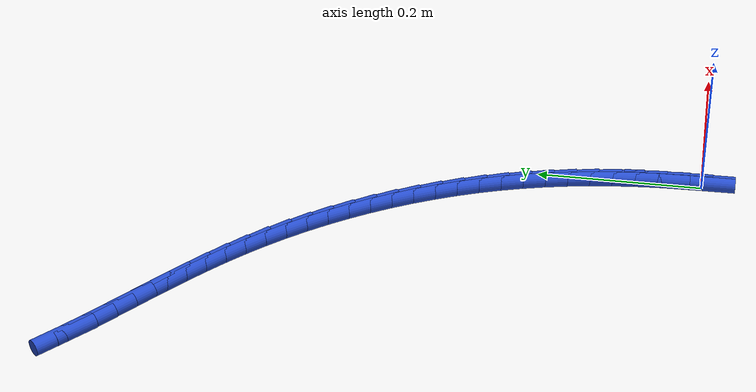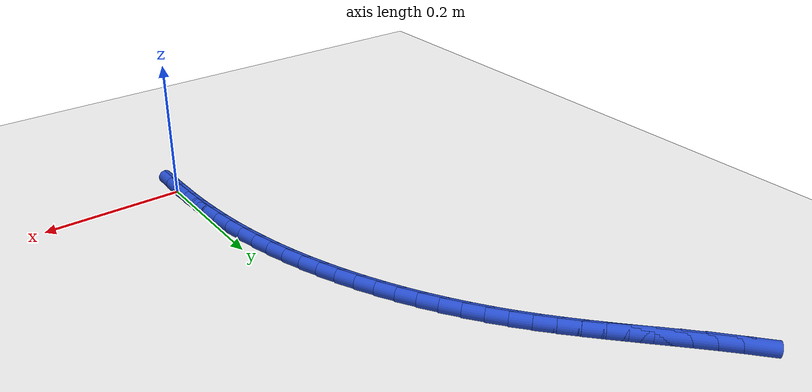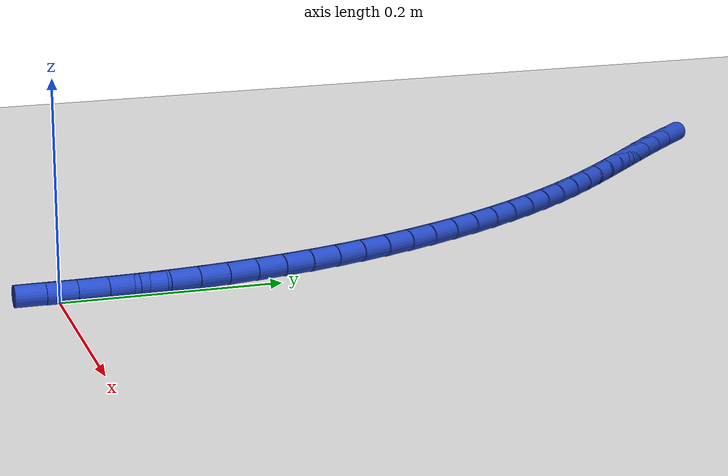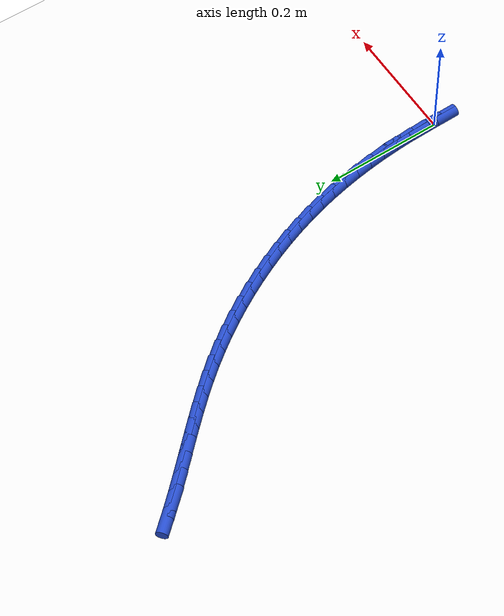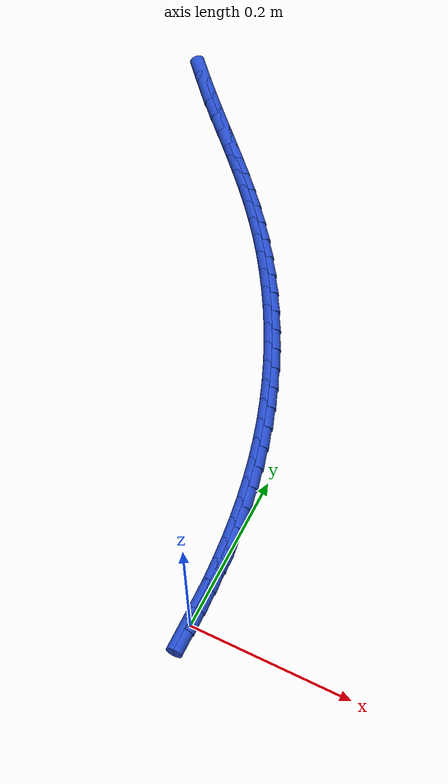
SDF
<sdf version="1.6">
 <world name="default">
  <model name="ground_plane">
   <static>1</static>
   <link name="link">
    <collision name="collision">
     <geometry><plane><normal>0 0 1</normal><size>100 100</size></plane></geometry>
     <surface><friction><ode><mu>100</mu><mu2>50</mu2></ode></friction></surface>
    </collision>
    <visual name="visual">
     <cast_shadows>0</cast_shadows>
     <geometry><plane><normal>0 0 1</normal><size>100 100</size></plane></geometry>
     <material>
      <script><uri>file://media/materials/scripts/gazebo.material</uri><name>Gazebo/WhiteGlow</name></script>
     </material>
    </visual>
   </link>
  </model>
  <model name="line">
   <link name="link_0">
    <pose>5.204170427930421e-18 1.3877787807814457e-17 0.01 0 1.57 -1.5601567712249702</pose>
    <collision name="collision">
     <geometry><cylinder><radius>0.01</radius><length>0.08</length></cylinder></geometry>
    </collision>
    <visual name="visual">
     <material>
      <script><name>Gazebo/Blue</name><uri>file://media/materials/scripts/gazebo.material</uri></script>
     </material>
     <geometry><cylinder><radius>0.01</radius><length>0.08</length></cylinder></geometry>
    </visual>
   </link>
   <link name="link_1">
    <pose>-0.000292424796263529 0.027483644413735873 0.01 0 1.57 -1.5350626083378796</pose>
    <collision name="collision">
     <geometry><cylinder><radius>0.01</radius><length>0.08</length></cylinder></geometry>
    </collision>
    <visual name="visual">
     <material>
      <script><name>Gazebo/Blue</name><uri>file://media/materials/scripts/gazebo.material</uri></script>
     </material>
     <geometry><cylinder><radius>0.01</radius><length>0.08</length></cylinder></geometry>
    </visual>
   </link>
   <link name="link_2">
    <pose>-0.0012735811089987473 0.054929393335032016 0.01 0 1.57 -1.5085356313974962</pose>
    <collision name="collision">
     <geometry><cylinder><radius>0.01</radius><length>0.08</length></cylinder></geometry>
    </collision>
    <visual name="visual">
     <material>
      <script><name>Gazebo/Blue</name><uri>file://media/materials/scripts/gazebo.material</uri></script>
     </material>
     <geometry><cylinder><radius>0.01</radius><length>0.08</length></cylinder></geometry>
    </visual>
   </link>
   <link name="link_3">
    <pose>-0.0029808334702392625 0.08231498203880791 0.01 0 1.57 -1.48055030720396</pose>
    <collision name="collision">
     <geometry><cylinder><radius>0.01</radius><length>0.08</length></cylinder></geometry>
    </collision>
    <visual name="visual">
     <material>
      <script><name>Gazebo/Blue</name><uri>file://media/materials/scripts/gazebo.material</uri></script>
     </material>
     <geometry><cylinder><radius>0.01</radius><length>0.08</length></cylinder></geometry>
    </visual>
   </link>
   <link name="link_4">
    <pose>-0.005451546412018678 0.10961814579998304 0.01 0 1.57 -1.4510875578380813</pose>
    <collision name="collision">
     <geometry><cylinder><radius>0.01</radius><length>0.08</length></cylinder></geometry>
    </collision>
    <visual name="visual">
     <material>
      <script><name>Gazebo/Blue</name><uri>file://media/materials/scripts/gazebo.material</uri></script>
     </material>
     <geometry><cylinder><radius>0.01</radius><length>0.08</length></cylinder></geometry>
    </visual>
   </link>
   <link name="link_5">
    <pose>-0.008723084466370604 0.13681661989347693 0.01 0 1.57 -1.420136669198616</pose>
    <collision name="collision">
     <geometry><cylinder><radius>0.01</radius><length>0.08</length></cylinder></geometry>
    </collision>
    <visual name="visual">
     <material>
      <script><name>Gazebo/Blue</name><uri>file://media/materials/scripts/gazebo.material</uri></script>
     </material>
     <geometry><cylinder><radius>0.01</radius><length>0.08</length></cylinder></geometry>
    </visual>
   </link>
   <link name="link_6">
    <pose>-0.012832812165328653 0.163888139594209 0.01 0 1.57 -1.3876973370609134</pose>
    <collision name="collision">
     <geometry><cylinder><radius>0.01</radius><length>0.08</length></cylinder></geometry>
    </collision>
    <visual name="visual">
     <material>
      <script><name>Gazebo/Blue</name><uri>file://media/materials/scripts/gazebo.material</uri></script>
     </material>
     <geometry><cylinder><radius>0.01</radius><length>0.08</length></cylinder></geometry>
    </visual>
   </link>
   <link name="link_7">
    <pose>-0.017818094040926425 0.19081044017709878 0.01 0 1.57 -1.3537817924561621</pose>
    <collision name="collision">
     <geometry><cylinder><radius>0.01</radius><length>0.08</length></cylinder></geometry>
    </collision>
    <visual name="visual">
     <material>
      <script><name>Gazebo/Blue</name><uri>file://media/materials/scripts/gazebo.material</uri></script>
     </material>
     <geometry><cylinder><radius>0.01</radius><length>0.08</length></cylinder></geometry>
    </visual>
   </link>
   <link name="link_8">
    <pose>-0.023716294625197535 0.2175612569170658 0.01 0 1.57 -1.318461324378395</pose>
    <collision name="collision">
     <geometry><cylinder><radius>0.01</radius><length>0.08</length></cylinder></geometry>
    </collision>
    <visual name="visual">
     <material>
      <script><name>Gazebo/Blue</name><uri>file://media/materials/scripts/gazebo.material</uri></script>
     </material>
     <geometry><cylinder><radius>0.01</radius><length>0.08</length></cylinder></geometry>
    </visual>
   </link>
   <link name="link_9">
    <pose>-0.030563462464434803 0.24411809862682715 0.01 0 1.57 -1.2827362650244243</pose>
    <collision name="collision">
     <geometry><cylinder><radius>0.01</radius><length>0.08</length></cylinder></geometry>
    </collision>
    <visual name="visual">
     <material>
      <script><name>Gazebo/Blue</name><uri>file://media/materials/scripts/gazebo.material</uri></script>
     </material>
     <geometry><cylinder><radius>0.01</radius><length>0.08</length></cylinder></geometry>
    </visual>
   </link>
   <link name="link_10">
    <pose>-0.03836667307972044 0.27045348827853244 0.01 0 1.57 -1.2475216026046925</pose>
    <collision name="collision">
     <geometry><cylinder><radius>0.01</radius><length>0.08</length></cylinder></geometry>
    </collision>
    <visual name="visual">
     <material>
      <script><name>Gazebo/Blue</name><uri>file://media/materials/scripts/gazebo.material</uri></script>
     </material>
     <geometry><cylinder><radius>0.01</radius><length>0.08</length></cylinder></geometry>
    </visual>
   </link>
   <link name="link_11">
    <pose>-0.04710473046950239 0.29653508372225795 0.01 0 1.57 -1.212797011041639</pose>
    <collision name="collision">
     <geometry><cylinder><radius>0.01</radius><length>0.08</length></cylinder></geometry>
    </collision>
    <visual name="visual">
     <material>
      <script><name>Gazebo/Blue</name><uri>file://media/materials/scripts/gazebo.material</uri></script>
     </material>
     <geometry><cylinder><radius>0.01</radius><length>0.08</length></cylinder></geometry>
    </visual>
   </link>
   <link name="link_12">
    <pose>-0.056755262973425584 0.3223303404941242 0.01 0 1.57 -1.1785001450796435</pose>
    <collision name="collision">
     <geometry><cylinder><radius>0.01</radius><length>0.08</length></cylinder></geometry>
    </collision>
    <visual name="visual">
     <material>
      <script><name>Gazebo/Blue</name><uri>file://media/materials/scripts/gazebo.material</uri></script>
     </material>
     <geometry><cylinder><radius>0.01</radius><length>0.08</length></cylinder></geometry>
    </visual>
   </link>
   <link name="link_13">
    <pose>-0.06729589893113488 0.3478067141302512 0.01 0 1.57 -1.1445667894212852</pose>
    <collision name="collision">
     <geometry><cylinder><radius>0.01</radius><length>0.08</length></cylinder></geometry>
    </collision>
    <visual name="visual">
     <material>
      <script><name>Gazebo/Blue</name><uri>file://media/materials/scripts/gazebo.material</uri></script>
     </material>
     <geometry><cylinder><radius>0.01</radius><length>0.08</length></cylinder></geometry>
    </visual>
   </link>
   <link name="link_14">
    <pose>-0.07870426668227531 0.3729316601667595 0.01 0 1.57 -1.1109312485228011</pose>
    <collision name="collision">
     <geometry><cylinder><radius>0.01</radius><length>0.08</length></cylinder></geometry>
    </collision>
    <visual name="visual">
     <material>
      <script><name>Gazebo/Blue</name><uri>file://media/materials/scripts/gazebo.material</uri></script>
     </material>
     <geometry><cylinder><radius>0.01</radius><length>0.08</length></cylinder></geometry>
    </visual>
   </link>
   <link name="link_15">
    <pose>-0.09095799456649167 0.3976726341397691 0.01 0 1.57 -1.0775266589312067</pose>
    <collision name="collision">
     <geometry><cylinder><radius>0.01</radius><length>0.08</length></cylinder></geometry>
    </collision>
    <visual name="visual">
     <material>
      <script><name>Gazebo/Blue</name><uri>file://media/materials/scripts/gazebo.material</uri></script>
     </material>
     <geometry><cylinder><radius>0.01</radius><length>0.08</length></cylinder></geometry>
    </visual>
   </link>
   <link name="link_16">
    <pose>-0.10403471092342897 0.42199709158540066 0.01 0 1.57 -1.044285237611704</pose>
    <collision name="collision">
     <geometry><cylinder><radius>0.01</radius><length>0.08</length></cylinder></geometry>
    </collision>
    <visual name="visual">
     <material>
      <script><name>Gazebo/Blue</name><uri>file://media/materials/scripts/gazebo.material</uri></script>
     </material>
     <geometry><cylinder><radius>0.01</radius><length>0.08</length></cylinder></geometry>
    </visual>
   </link>
   <link name="link_17">
    <pose>-0.11791204409273214 0.4458724880397742 0.01 0 1.57 -1.0111384799611873</pose>
    <collision name="collision">
     <geometry><cylinder><radius>0.01</radius><length>0.08</length></cylinder></geometry>
    </collision>
    <visual name="visual">
     <material>
      <script><name>Gazebo/Blue</name><uri>file://media/materials/scripts/gazebo.material</uri></script>
     </material>
     <geometry><cylinder><radius>0.01</radius><length>0.08</length></cylinder></geometry>
    </visual>
   </link>
   <link name="link_18">
    <pose>-0.13256762241404596 0.46926627903900986 0.01 0 1.57 -0.9780173212782878</pose>
    <collision name="collision">
     <geometry><cylinder><radius>0.01</radius><length>0.08</length></cylinder></geometry>
    </collision>
    <visual name="visual">
     <material>
      <script><name>Gazebo/Blue</name><uri>file://media/materials/scripts/gazebo.material</uri></script>
     </material>
     <geometry><cylinder><radius>0.01</radius><length>0.08</length></cylinder></geometry>
    </visual>
   </link>
   <link name="link_19">
    <pose>-0.1479790742270155 0.4921459201192282 0.01 0 1.57 -0.9448522754947057</pose>
    <collision name="collision">
     <geometry><cylinder><radius>0.01</radius><length>0.08</length></cylinder></geometry>
    </collision>
    <visual name="visual">
     <material>
      <script><name>Gazebo/Blue</name><uri>file://media/materials/scripts/gazebo.material</uri></script>
     </material>
     <geometry><cylinder><radius>0.01</radius><length>0.08</length></cylinder></geometry>
    </visual>
   </link>
   <link name="link_20">
    <pose>-0.16412402787128563 0.5144788668165494 0.01 0 1.57 -0.9115735650611517</pose>
    <collision name="collision">
     <geometry><cylinder><radius>0.01</radius><length>0.08</length></cylinder></geometry>
    </collision>
    <visual name="visual">
     <material>
      <script><name>Gazebo/Blue</name><uri>file://media/materials/scripts/gazebo.material</uri></script>
     </material>
     <geometry><cylinder><radius>0.01</radius><length>0.08</length></cylinder></geometry>
    </visual>
   </link>
   <link name="link_21">
    <pose>-0.1809801116865013 0.5362325746670938 0.01 0 1.57 -0.8784412272285269</pose>
    <collision name="collision">
     <geometry><cylinder><radius>0.01</radius><length>0.08</length></cylinder></geometry>
    </collision>
    <visual name="visual">
     <material>
      <script><name>Gazebo/Blue</name><uri>file://media/materials/scripts/gazebo.material</uri></script>
     </material>
     <geometry><cylinder><radius>0.01</radius><length>0.08</length></cylinder></geometry>
    </visual>
   </link>
   <link name="link_22">
    <pose>-0.1985193891395126 0.5573819903523333 0.01 0 1.57 -0.8491160964049878</pose>
    <collision name="collision">
     <geometry><cylinder><radius>0.01</radius><length>0.08</length></cylinder></geometry>
    </collision>
    <visual name="visual">
     <material>
      <script><name>Gazebo/Blue</name><uri>file://media/materials/scripts/gazebo.material</uri></script>
     </material>
     <geometry><cylinder><radius>0.01</radius><length>0.08</length></cylinder></geometry>
    </visual>
   </link>
   <link name="link_23">
    <pose>-0.21665169526553926 0.577985829265717 0.01 0 1.57 -0.8259614706746266</pose>
    <collision name="collision">
     <geometry><cylinder><radius>0.01</radius><length>0.08</length></cylinder></geometry>
    </collision>
    <visual name="visual">
     <material>
      <script><name>Gazebo/Blue</name><uri>file://media/materials/scripts/gazebo.material</uri></script>
     </material>
     <geometry><cylinder><radius>0.01</radius><length>0.08</length></cylinder></geometry>
    </visual>
   </link>
   <link name="link_24">
    <pose>-0.23524785722446198 0.598155317194875 0.01 0 1.57 -0.8090396696403415</pose>
    <collision name="collision">
     <geometry><cylinder><radius>0.01</radius><length>0.08</length></cylinder></geometry>
    </collision>
    <visual name="visual">
     <material>
      <script><name>Gazebo/Blue</name><uri>file://media/materials/scripts/gazebo.material</uri></script>
     </material>
     <geometry><cylinder><radius>0.01</radius><length>0.08</length></cylinder></geometry>
    </visual>
   </link>
   <link name="link_25">
    <pose>-0.2541781013746335 0.6180024886955326 0.01 0 1.57 -0.7983538027062772</pose>
    <collision name="collision">
     <geometry><cylinder><radius>0.01</radius><length>0.08</length></cylinder></geometry>
    </collision>
    <visual name="visual">
     <material>
      <script><name>Gazebo/Blue</name><uri>file://media/materials/scripts/gazebo.material</uri></script>
     </material>
     <geometry><cylinder><radius>0.01</radius><length>0.08</length></cylinder></geometry>
    </visual>
   </link>
   <link name="link_26">
    <pose>-0.2733126540744067 0.6376393783234156 0.01 0 1.57 -0.7939030940804408</pose>
    <collision name="collision">
     <geometry><cylinder><radius>0.01</radius><length>0.08</length></cylinder></geometry>
    </collision>
    <visual name="visual">
     <material>
      <script><name>Gazebo/Blue</name><uri>file://media/materials/scripts/gazebo.material</uri></script>
     </material>
     <geometry><cylinder><radius>0.01</radius><length>0.08</length></cylinder></geometry>
    </visual>
   </link>
   <link name="link_27">
    <pose>-0.29252174168213446 0.6571780206342487 0.01 0 1.57 -0.7956953710884858</pose>
    <collision name="collision">
     <geometry><cylinder><radius>0.01</radius><length>0.08</length></cylinder></geometry>
    </collision>
    <visual name="visual">
     <material>
      <script><name>Gazebo/Blue</name><uri>file://media/materials/scripts/gazebo.material</uri></script>
     </material>
     <geometry><cylinder><radius>0.01</radius><length>0.08</length></cylinder></geometry>
    </visual>
   </link>
   <link name="link_28">
    <pose>-0.3116755905561697 0.6767304501837579 0.01 0 1.57 -0.8037523324053812</pose>
    <collision name="collision">
     <geometry><cylinder><radius>0.01</radius><length>0.08</length></cylinder></geometry>
    </collision>
    <visual name="visual">
     <material>
      <script><name>Gazebo/Blue</name><uri>file://media/materials/scripts/gazebo.material</uri></script>
     </material>
     <geometry><cylinder><radius>0.01</radius><length>0.08</length></cylinder></geometry>
    </visual>
   </link>
   <link name="link_29">
    <pose>-0.33064442705486513 0.6964087015276683 0.01 0 1.57 -0.8181075725865407</pose>
    <collision name="collision">
     <geometry><cylinder><radius>0.01</radius><length>0.08</length></cylinder></geometry>
    </collision>
    <visual name="visual">
     <material>
      <script><name>Gazebo/Blue</name><uri>file://media/materials/scripts/gazebo.material</uri></script>
     </material>
     <geometry><cylinder><radius>0.01</radius><length>0.08</length></cylinder></geometry>
    </visual>
   </link>
   <link name="link_30">
    <pose>-0.34929847753657367 0.7163248092217055 0.01 0 1.57 -0.8387971651323322</pose>
    <collision name="collision">
     <geometry><cylinder><radius>0.01</radius><length>0.08</length></cylinder></geometry>
    </collision>
    <visual name="visual">
     <material>
      <script><name>Gazebo/Blue</name><uri>file://media/materials/scripts/gazebo.material</uri></script>
     </material>
     <geometry><cylinder><radius>0.01</radius><length>0.08</length></cylinder></geometry>
    </visual>
   </link>
   <link name="link_270">
    <pose>4.7704895589362195e-18 6.938893903907228e-18 0.01 0 1.57 -1.5605693555094482</pose>
    <collision name="collision">
     <geometry><cylinder><radius>0.01</radius><length>0.08</length></cylinder></geometry>
    </collision>
    <visual name="visual">
     <material>
      <script><name>Gazebo/Blue</name><uri>file://media/materials/scripts/gazebo.material</uri></script>
     </material>
     <geometry><cylinder><radius>0.01</radius><length>0.08</length></cylinder></geometry>
    </visual>
   </link>
   <link name="link_271">
    <pose>-0.00028106541394333105 0.027481803465066495 0.01 0 1.57 -1.5379409808431859</pose>
    <collision name="collision">
     <geometry><cylinder><radius>0.01</radius><length>0.08</length></cylinder></geometry>
    </collision>
    <visual name="visual">
     <material>
      <script><name>Gazebo/Blue</name><uri>file://media/materials/scripts/gazebo.material</uri></script>
     </material>
     <geometry><cylinder><radius>0.01</radius><length>0.08</length></cylinder></geometry>
    </visual>
   </link>
   <link name="link_272">
    <pose>-0.0011827060504371262 0.05491466574567434 0.01 0 1.57 -1.549262493902586</pose>
    <collision name="collision">
     <geometry><cylinder><radius>0.01</radius><length>0.08</length></cylinder></geometry>
    </collision>
    <visual name="visual">
     <material>
      <script><name>Gazebo/Blue</name><uri>file://media/materials/scripts/gazebo.material</uri></script>
     </material>
     <geometry><cylinder><radius>0.01</radius><length>0.08</length></cylinder></geometry>
    </visual>
   </link>
  </model>
 </world>
</sdf>
